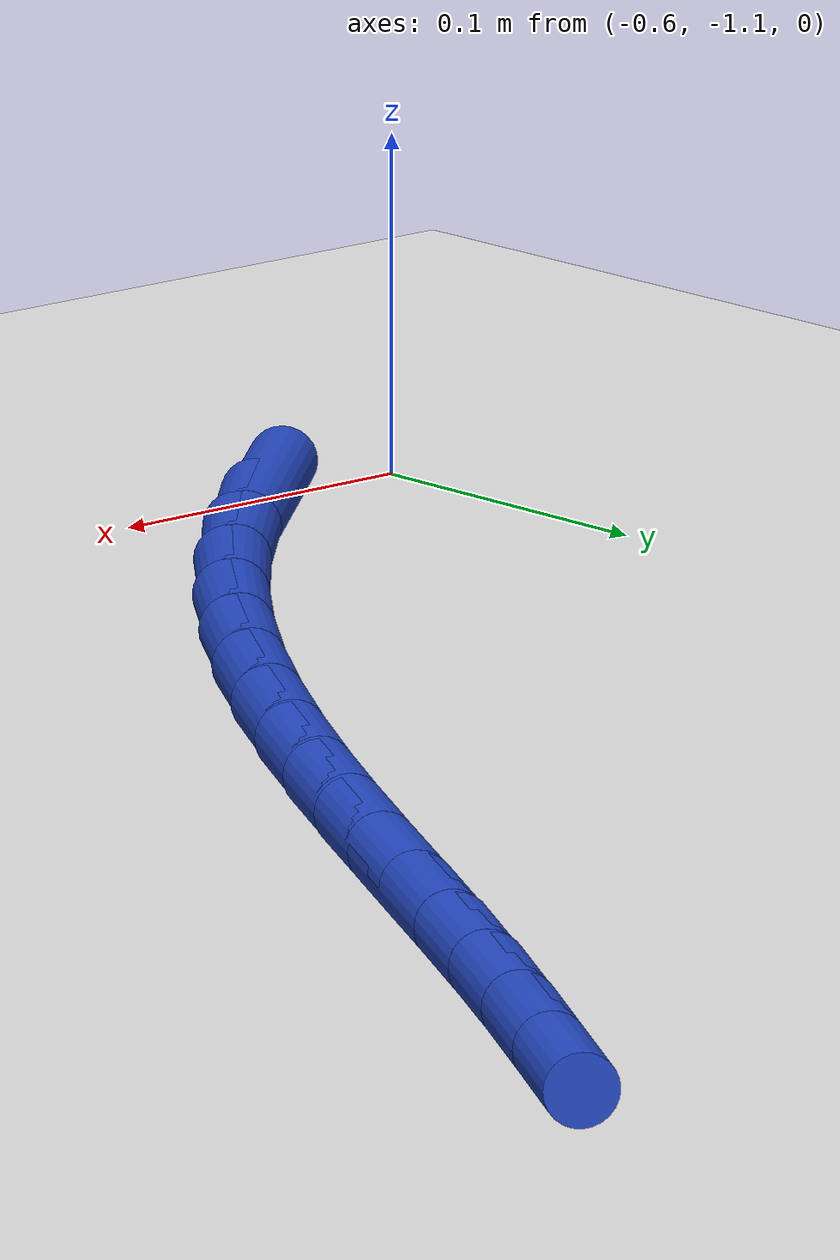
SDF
<sdf version="1.6">
 <world name="default">
  <model name="ground_plane">
   <static>1</static>
   <link name="link">
    <collision name="collision">
     <geometry><plane><normal>0 0 1</normal><size>100 100</size></plane></geometry>
     <surface><friction><ode><mu>100</mu><mu2>50</mu2></ode></friction></surface>
    </collision>
    <visual name="visual">
     <cast_shadows>0</cast_shadows>
     <geometry><plane><normal>0 0 1</normal><size>100 100</size></plane></geometry>
     <material>
      <script><uri>file://media/materials/scripts/gazebo.material</uri><name>Gazebo/WhiteGlow</name></script>
     </material>
    </visual>
   </link>
  </model>
  <model name="line">
   <link name="link_160">
    <pose>-0.5308103806234755 -1.0763002490153684 0.01 0 1.57 0.7212474638962831</pose>
    <collision name="collision">
     <geometry><cylinder><radius>0.01</radius><length>0.08</length></cylinder></geometry>
    </collision>
    <visual name="visual">
     <material>
      <script><name>Gazebo/Blue</name><uri>file://media/materials/scripts/gazebo.material</uri></script>
     </material>
     <geometry><cylinder><radius>0.01</radius><length>0.08</length></cylinder></geometry>
    </visual>
   </link>
   <link name="link_161">
    <pose>-0.5003586206902371 -1.049524704972291 0.01 0 1.57 0.7839403769872688</pose>
    <collision name="collision">
     <geometry><cylinder><radius>0.01</radius><length>0.08</length></cylinder></geometry>
    </collision>
    <visual name="visual">
     <material>
      <script><name>Gazebo/Blue</name><uri>file://media/materials/scripts/gazebo.material</uri></script>
     </material>
     <geometry><cylinder><radius>0.01</radius><length>0.08</length></cylinder></geometry>
    </visual>
   </link>
   <link name="link_162">
    <pose>-0.4717667591872514 -1.0210160838358775 0.01 0 1.57 0.8406536660554325</pose>
    <collision name="collision">
     <geometry><cylinder><radius>0.01</radius><length>0.08</length></cylinder></geometry>
    </collision>
    <visual name="visual">
     <material>
      <script><name>Gazebo/Blue</name><uri>file://media/materials/scripts/gazebo.material</uri></script>
     </material>
     <geometry><cylinder><radius>0.01</radius><length>0.08</length></cylinder></geometry>
    </visual>
   </link>
   <link name="link_163">
    <pose>-0.44484987522798647 -0.9909472149568566 0.01 0 1.57 0.8910012024755312</pose>
    <collision name="collision">
     <geometry><cylinder><radius>0.01</radius><length>0.08</length></cylinder></geometry>
    </collision>
    <visual name="visual">
     <material>
      <script><name>Gazebo/Blue</name><uri>file://media/materials/scripts/gazebo.material</uri></script>
     </material>
     <geometry><cylinder><radius>0.01</radius><length>0.08</length></cylinder></geometry>
    </visual>
   </link>
   <link name="link_164">
    <pose>-0.4194230479259097 -0.9594909276859559 0.01 0 1.57 0.934809843762238</pose>
    <collision name="collision">
     <geometry><cylinder><radius>0.01</radius><length>0.08</length></cylinder></geometry>
    </collision>
    <visual name="visual">
     <material>
      <script><name>Gazebo/Blue</name><uri>file://media/materials/scripts/gazebo.material</uri></script>
     </material>
     <geometry><cylinder><radius>0.01</radius><length>0.08</length></cylinder></geometry>
    </visual>
   </link>
   <link name="link_165">
    <pose>-0.3953013563944889 -0.9268200513739042 0.01 0 1.57 0.9720618483827994</pose>
    <collision name="collision">
     <geometry><cylinder><radius>0.01</radius><length>0.08</length></cylinder></geometry>
    </collision>
    <visual name="visual">
     <material>
      <script><name>Gazebo/Blue</name><uri>file://media/materials/scripts/gazebo.material</uri></script>
     </material>
     <geometry><cylinder><radius>0.01</radius><length>0.08</length></cylinder></geometry>
    </visual>
   </link>
   <link name="link_166">
    <pose>-0.3722998797471919 -0.8931074153714302 0.01 0 1.57 1.002838668564213</pose>
    <collision name="collision">
     <geometry><cylinder><radius>0.01</radius><length>0.08</length></cylinder></geometry>
    </collision>
    <visual name="visual">
     <material>
      <script><name>Gazebo/Blue</name><uri>file://media/materials/scripts/gazebo.material</uri></script>
     </material>
     <geometry><cylinder><radius>0.01</radius><length>0.08</length></cylinder></geometry>
    </visual>
   </link>
   <link name="link_167">
    <pose>-0.3502336970974857 -0.8585258490292604 0.01 0 1.57 1.0272726555628393</pose>
    <collision name="collision">
     <geometry><cylinder><radius>0.01</radius><length>0.08</length></cylinder></geometry>
    </collision>
    <visual name="visual">
     <material>
      <script><name>Gazebo/Blue</name><uri>file://media/materials/scripts/gazebo.material</uri></script>
     </material>
     <geometry><cylinder><radius>0.01</radius><length>0.08</length></cylinder></geometry>
    </visual>
   </link>
   <link name="link_168">
    <pose>-0.328917887558838 -0.8232481816981241 0.01 0 1.57 1.0455091141517385</pose>
    <collision name="collision">
     <geometry><cylinder><radius>0.01</radius><length>0.08</length></cylinder></geometry>
    </collision>
    <visual name="visual">
     <material>
      <script><name>Gazebo/Blue</name><uri>file://media/materials/scripts/gazebo.material</uri></script>
     </material>
     <geometry><cylinder><radius>0.01</radius><length>0.08</length></cylinder></geometry>
    </visual>
   </link>
   <link name="link_169">
    <pose>-0.3081675302447168 -0.7874472427287492 0.01 0 1.57 1.0576785647852527</pose>
    <collision name="collision">
     <geometry><cylinder><radius>0.01</radius><length>0.08</length></cylinder></geometry>
    </collision>
    <visual name="visual">
     <material>
      <script><name>Gazebo/Blue</name><uri>file://media/materials/scripts/gazebo.material</uri></script>
     </material>
     <geometry><cylinder><radius>0.01</radius><length>0.08</length></cylinder></geometry>
    </visual>
   </link>
   <link name="link_170">
    <pose>-0.2877977042685896 -0.751295861471864 0.01 0 1.57 1.063877872611394</pose>
    <collision name="collision">
     <geometry><cylinder><radius>0.01</radius><length>0.08</length></cylinder></geometry>
    </collision>
    <visual name="visual">
     <material>
      <script><name>Gazebo/Blue</name><uri>file://media/materials/scripts/gazebo.material</uri></script>
     </material>
     <geometry><cylinder><radius>0.01</radius><length>0.08</length></cylinder></geometry>
    </visual>
   </link>
   <link name="link_171">
    <pose>-0.26762348874392405 -0.7149668672781969 0.01 0 1.57 1.0641586575574056</pose>
    <collision name="collision">
     <geometry><cylinder><radius>0.01</radius><length>0.08</length></cylinder></geometry>
    </collision>
    <visual name="visual">
     <material>
      <script><name>Gazebo/Blue</name><uri>file://media/materials/scripts/gazebo.material</uri></script>
     </material>
     <geometry><cylinder><radius>0.01</radius><length>0.08</length></cylinder></geometry>
    </visual>
   </link>
   <link name="link_172">
    <pose>-0.24745996278418816 -0.6786330894984764 0.01 0 1.57 1.0585217051431375</pose>
    <collision name="collision">
     <geometry><cylinder><radius>0.01</radius><length>0.08</length></cylinder></geometry>
    </collision>
    <visual name="visual">
     <material>
      <script><name>Gazebo/Blue</name><uri>file://media/materials/scripts/gazebo.material</uri></script>
     </material>
     <geometry><cylinder><radius>0.01</radius><length>0.08</length></cylinder></geometry>
    </visual>
   </link>
   <link name="link_173">
    <pose>-0.22712220550284867 -0.6424673574834296 0.01 0 1.57 1.046940423813843</pose>
    <collision name="collision">
     <geometry><cylinder><radius>0.01</radius><length>0.08</length></cylinder></geometry>
    </collision>
    <visual name="visual">
     <material>
      <script><name>Gazebo/Blue</name><uri>file://media/materials/scripts/gazebo.material</uri></script>
     </material>
     <geometry><cylinder><radius>0.01</radius><length>0.08</length></cylinder></geometry>
    </visual>
   </link>
   <link name="link_174">
    <pose>-0.2064261076457479 -0.60664194113516 0.01 0 1.57 1.0336652089900673</pose>
    <collision name="collision">
     <geometry><cylinder><radius>0.01</radius><length>0.08</length></cylinder></geometry>
    </collision>
    <visual name="visual">
     <material>
      <script><name>Gazebo/Blue</name><uri>file://media/materials/scripts/gazebo.material</uri></script>
     </material>
     <geometry><cylinder><radius>0.01</radius><length>0.08</length></cylinder></geometry>
    </visual>
   </link>
   <link name="link_175">
    <pose>-0.18533535534614204 -0.5712272367378775 0.01 0 1.57 1.028053001685177</pose>
    <collision name="collision">
     <geometry><cylinder><radius>0.01</radius><length>0.08</length></cylinder></geometry>
    </collision>
    <visual name="visual">
     <material>
      <script><name>Gazebo/Blue</name><uri>file://media/materials/scripts/gazebo.material</uri></script>
     </material>
     <geometry><cylinder><radius>0.01</radius><length>0.08</length></cylinder></geometry>
    </visual>
   </link>
  </model>
 </world>
</sdf>
